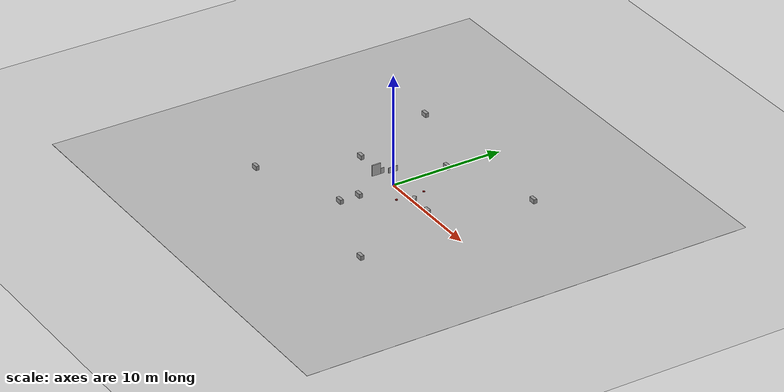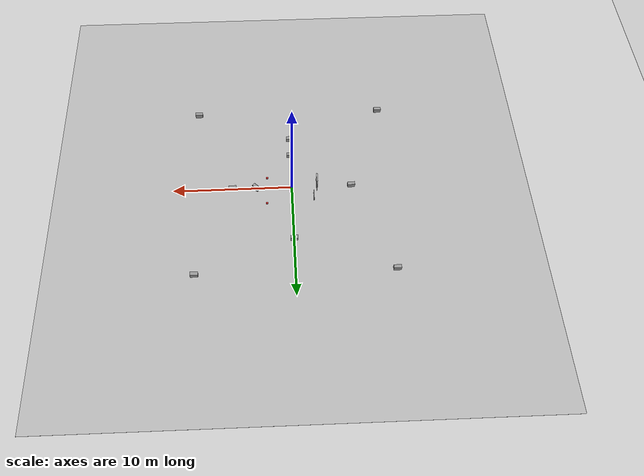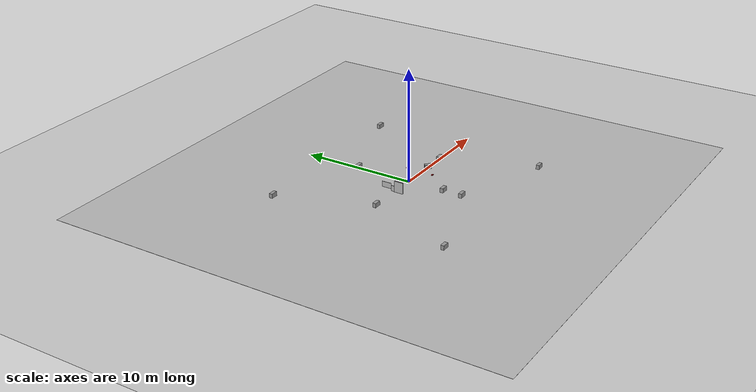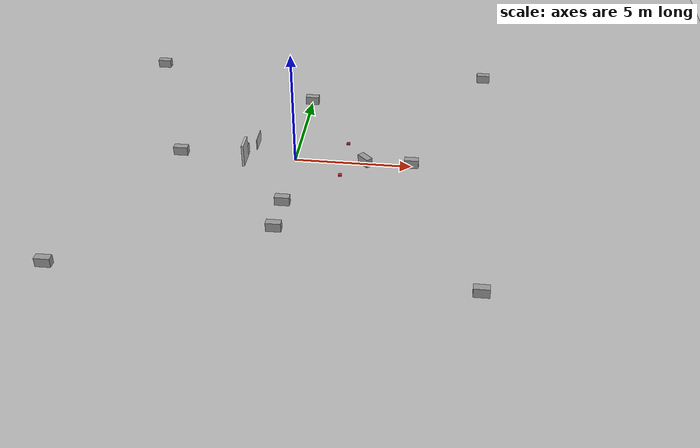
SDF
<sdf version="1.6">
 <world name="default">
  <scene><shadows>0</shadows><ambient>0.4 0.4 0.4 1</ambient><background>0.7 0.7 0.7 1</background></scene>
  <light name="sun" type="directional">
   <cast_shadows>0</cast_shadows>
   <pose>0 0 5 0 -0 0</pose>
   <diffuse>0.8 0.8 0.8 1</diffuse>
   <specular>0.1 0.1 0.1 1</specular>
   <attenuation>
    <range>1000</range>
    <constant>0.9</constant>
    <linear>0.01</linear>
    <quadratic>0.001</quadratic>
   </attenuation>
   <direction>-0.5 0.5 -1</direction>
  </light>
  <physics name="default_physics" default="0" type="ode">
   <max_step_size>0.001</max_step_size>
   <real_time_factor>1</real_time_factor>
   <real_time_update_rate>1000</real_time_update_rate>
  </physics>
  <scene><ambient>0.4 0.4 0.4 1</ambient><background>0.7 0.7 0.7 1</background><shadows>1</shadows></scene>
  <spherical_coordinates>
   <surface_model>EARTH_WGS84</surface_model>
   <latitude_deg>0</latitude_deg>
   <longitude_deg>0</longitude_deg>
   <elevation>0</elevation>
   <heading_deg>0</heading_deg>
  </spherical_coordinates>
  <model name="ground_plane">
   <static>1</static>
   <link name="link">
    <collision name="collision">
     <geometry><plane><normal>0 0 1</normal><size>100 100</size></plane></geometry>
     <surface><friction><ode><mu>1</mu><mu2>1</mu2></ode></friction></surface>
    </collision>
    <visual name="visual">
     <cast_shadows>0</cast_shadows>
     <geometry><plane><normal>0 0 1</normal><size>100 100</size></plane></geometry>
     <material>
      <script><uri>file://media/materials/scripts/gazebo.material</uri><name>Gazebo/Grey</name></script>
     </material>
    </visual>
    <velocity_decay><linear>0</linear><angular>0</angular></velocity_decay>
   </link>
  </model>
  <model name="unit_box">
   <link name="link">
    <inertial>
     <mass>1</mass>
     <inertia>
      <ixx>0.166667</ixx>
      <ixy>0</ixy>
      <ixz>0</ixz>
      <iyy>0.166667</iyy>
      <iyz>0</iyz>
      <izz>0.166667</izz>
     </inertia>
    </inertial>
    <visual name="visual">
     <geometry><box><size>0.139873 0.143387 0.183908</size></box></geometry>
     <material>
      <script><name>Gazebo/Red</name><uri>file://media/materials/scripts/gazebo.material</uri></script>
      <shader type="pixel"><normal_map>__default__</normal_map></shader>
      <ambient>1 0.3 0.3 1</ambient>
      <diffuse>1 0.7 0.7 1</diffuse>
      <specular>1 0.01 0.01 1</specular>
      <emissive>0.9 0 0 1</emissive>
     </material>
    </visual>
    <collision name="collision">
     <geometry><box><size>0.139873 0.143387 0.183908</size></box></geometry>
     <surface>
      <friction>
       <ode><mu>1</mu><mu2>1</mu2><fdir1>0 0 0</fdir1><slip1>0</slip1><slip2>0</slip2></ode>
       <torsional>
        <coefficient>1</coefficient>
        <patch_radius>0</patch_radius>
        <surface_radius>0</surface_radius>
        <use_patch_radius>1</use_patch_radius>
        <ode><slip>0</slip></ode>
       </torsional>
      </friction>
      <bounce><restitution_coefficient>0</restitution_coefficient><threshold>1e+06</threshold></bounce>
      <contact>
       <collide_without_contact>0</collide_without_contact>
       <collide_without_contact_bitmask>1</collide_without_contact_bitmask>
       <collide_bitmask>1</collide_bitmask>
       <ode>
        <soft_cfm>0</soft_cfm>
        <soft_erp>0.2</soft_erp>
        <kp>1e+13</kp>
        <kd>1</kd>
        <max_vel>0.01</max_vel>
        <min_depth>0</min_depth>
       </ode>
       <bullet>
        <split_impulse>1</split_impulse>
        <split_impulse_penetration_threshold>-0.01</split_impulse_penetration_threshold>
        <soft_cfm>0</soft_cfm>
        <soft_erp>0.2</soft_erp>
        <kp>1e+13</kp>
        <kd>1</kd>
       </bullet>
      </contact>
     </surface>
    </collision>
   </link>
   <static>0</static>
   <pose>2.12407 1.4948 0 0 -0 0</pose>
  </model>
  <model name="unit_box_0">
   <link name="link">
    <inertial>
     <mass>1</mass>
     <inertia>
      <ixx>0.166667</ixx>
      <ixy>0</ixy>
      <ixz>0</ixz>
      <iyy>0.166667</iyy>
      <iyz>0</iyz>
      <izz>0.166667</izz>
     </inertia>
    </inertial>
    <visual name="visual">
     <geometry><box><size>0.139873 0.143387 0.183908</size></box></geometry>
     <material>
      <script><name>Gazebo/Red</name><uri>file://media/materials/scripts/gazebo.material</uri></script>
      <shader type="pixel"><normal_map>__default__</normal_map></shader>
      <ambient>1 0.3 0.3 1</ambient>
      <diffuse>1 0.7 0.7 1</diffuse>
      <specular>1 0.01 0.01 1</specular>
      <emissive>0.9 0 0 1</emissive>
     </material>
    </visual>
    <collision name="collision">
     <geometry><box><size>0.139873 0.143387 0.183908</size></box></geometry>
     <surface>
      <friction>
       <ode><mu>1</mu><mu2>1</mu2><fdir1>0 0 0</fdir1><slip1>0</slip1><slip2>0</slip2></ode>
       <torsional>
        <coefficient>1</coefficient>
        <patch_radius>0</patch_radius>
        <surface_radius>0</surface_radius>
        <use_patch_radius>1</use_patch_radius>
        <ode><slip>0</slip></ode>
       </torsional>
      </friction>
      <bounce><restitution_coefficient>0</restitution_coefficient><threshold>1e+06</threshold></bounce>
      <contact>
       <collide_without_contact>0</collide_without_contact>
       <collide_without_contact_bitmask>1</collide_without_contact_bitmask>
       <collide_bitmask>1</collide_bitmask>
       <ode>
        <soft_cfm>0</soft_cfm>
        <soft_erp>0.2</soft_erp>
        <kp>1e+13</kp>
        <kd>1</kd>
        <max_vel>0.01</max_vel>
        <min_depth>0</min_depth>
       </ode>
       <bullet>
        <split_impulse>1</split_impulse>
        <split_impulse_penetration_threshold>-0.01</split_impulse_penetration_threshold>
        <soft_cfm>0</soft_cfm>
        <soft_erp>0.2</soft_erp>
        <kp>1e+13</kp>
        <kd>1</kd>
       </bullet>
      </contact>
     </surface>
    </collision>
   </link>
   <static>0</static>
   <pose>2.06864 -1.00799 0 0 -0 0</pose>
  </model>
  <model name="rug_ivory_2m_0">
   <link name="link">
    <visual name="visual">
     <geometry><box><size>1.6 2 0.005</size></box></geometry>
     <material>
      <script>
       <uri>https://fuel.ignitionrobotics.org/1.0/makerspet/models/rug_ivory_2m/1/files/material/script</uri>
       <uri>https://fuel.ignitionrobotics.org/1.0/makerspet/models/rug_ivory_2m/1/files/material/textures</uri>
       <name>Custom/rug_ivory_2m</name>
      </script>
     </material>
    </visual>
   </link>
   <static>1</static>
   <pose>-1.68463 0.969564 0 0 -0 0</pose>
  </model>
  <model name="makerspet_poster">
   <link name="link">
    <visual name="visual">
     <geometry><box><size>0.03 0.85714 1</size></box></geometry>
     <material>
      <script>
       <uri>https://fuel.ignitionrobotics.org/1.0/makerspet/models/makerspet_poster/1/files/material/script</uri>
       <uri>https://fuel.ignitionrobotics.org/1.0/makerspet/models/makerspet_poster/1/files/material/textures</uri>
       <name>Custom/makerspet</name>
      </script>
     </material>
    </visual>
   </link>
   <static>1</static>
   <pose>-1.79858 1.04969 0 0 -0 0</pose>
  </model>
  <model name="kaiaai_poster">
   <link name="link">
    <visual name="visual">
     <geometry><box><size>0.03 0.9782 1</size></box></geometry>
     <material>
      <script>
       <uri>https://fuel.ignitionrobotics.org/1.0/makerspet/models/kaiaai_poster/1/files/material/script</uri>
       <uri>https://fuel.ignitionrobotics.org/1.0/makerspet/models/kaiaai_poster/1/files/material/textures</uri>
       <name>Custom/kaiaai</name>
      </script>
     </material>
    </visual>
   </link>
   <static>1</static>
   <pose>-2.09205 -0.074601 0 0 -0 0</pose>
  </model>
  <model name="door_08x2m_0">
   <link name="link">
    <visual name="visual">
     <geometry><box><size>0.1 0.8 2</size></box></geometry>
     <material>
      <script>
       <uri>https://fuel.ignitionrobotics.org/1.0/makerspet/models/door_08x2m/1/files/material/script</uri>
       <uri>https://fuel.ignitionrobotics.org/1.0/makerspet/models/door_08x2m/1/files/material/textures</uri>
       <name>Custom/door_08x2m</name>
      </script>
     </material>
    </visual>
   </link>
   <static>1</static>
   <pose>-2.1175 -0.31181 0 0 -0 0</pose>
  </model>
  <model name="table_1">
   <link name="Wall">
    <pose>0 0 0.1985 0 -0 0</pose>
    <inertial>
     <mass>5</mass>
     <inertia><ixx>0.1022</ixx><iyy>0.2197</iyy><izz>0.1905</izz><ixy>0</ixy><ixz>0</ixz><iyz>0</iyz></inertia>
    </inertial>
    <collision name="Wall_Collision"><geometry><box><size>0.608 0.296 0.397</size></box></geometry></collision>
    <visual name="Wall_Visual">
     <geometry><box><size>0.608 0.296 0.397</size></box></geometry>
     <material>
      <script><uri>file://media/materials/scripts/gazebo.material</uri><name>Gazebo/Grey</name></script>
      <ambient>1 1 1 1</ambient>
     </material>
    </visual>
   </link>
   <static>1</static>
   <pose>-8 -8 0 0 -0 0</pose>
  </model>
  <model name="table_2">
   <link name="Wall">
    <pose>0 0 0.1985 0 -0 0</pose>
    <inertial>
     <mass>5</mass>
     <inertia><ixx>0.1022</ixx><iyy>0.2197</iyy><izz>0.1905</izz><ixy>0</ixy><ixz>0</ixz><iyz>0</iyz></inertia>
    </inertial>
    <collision name="Wall_Collision"><geometry><box><size>0.608 0.296 0.397</size></box></geometry></collision>
    <visual name="Wall_Visual">
     <geometry><box><size>0.608 0.296 0.397</size></box></geometry>
     <material>
      <script><uri>file://media/materials/scripts/gazebo.material</uri><name>Gazebo/Grey</name></script>
      <ambient>1 1 1 1</ambient>
     </material>
    </visual>
   </link>
   <static>1</static>
   <pose>8 -8 0 0 -0 0</pose>
  </model>
  <model name="table_3">
   <link name="Wall">
    <pose>0 0 0.1985 0 -0 0</pose>
    <inertial>
     <mass>5</mass>
     <inertia><ixx>0.1022</ixx><iyy>0.2197</iyy><izz>0.1905</izz><ixy>0</ixy><ixz>0</ixz><iyz>0</iyz></inertia>
    </inertial>
    <collision name="Wall_Collision"><geometry><box><size>0.608 0.296 0.397</size></box></geometry></collision>
    <visual name="Wall_Visual">
     <geometry><box><size>0.608 0.296 0.397</size></box></geometry>
     <material>
      <script><uri>file://media/materials/scripts/gazebo.material</uri><name>Gazebo/Grey</name></script>
      <ambient>1 1 1 1</ambient>
     </material>
    </visual>
   </link>
   <static>1</static>
   <pose>0 5 0 0 -0 0</pose>
  </model>
  <model name="table_4">
   <link name="Wall">
    <pose>0 0 0.1985 0 -0 0</pose>
    <inertial>
     <mass>5</mass>
     <inertia><ixx>0.1022</ixx><iyy>0.2197</iyy><izz>0.1905</izz><ixy>0</ixy><ixz>0</ixz><iyz>0</iyz></inertia>
    </inertial>
    <collision name="Wall_Collision"><geometry><box><size>0.608 0.296 0.397</size></box></geometry></collision>
    <visual name="Wall_Visual">
     <geometry><box><size>0.608 0.296 0.397</size></box></geometry>
     <material>
      <script><uri>file://media/materials/scripts/gazebo.material</uri><name>Gazebo/Grey</name></script>
      <ambient>1 1 1 1</ambient>
     </material>
    </visual>
   </link>
   <static>1</static>
   <pose>-5 0 0 0 -0 0</pose>
  </model>
  <model name="table_5">
   <link name="Wall">
    <pose>0 0 0.1985 0 -0 0</pose>
    <inertial>
     <mass>5</mass>
     <inertia><ixx>0.1022</ixx><iyy>0.2197</iyy><izz>0.1905</izz><ixy>0</ixy><ixz>0</ixz><iyz>0</iyz></inertia>
    </inertial>
    <collision name="Wall_Collision"><geometry><box><size>0.608 0.296 0.397</size></box></geometry></collision>
    <visual name="Wall_Visual">
     <geometry><box><size>0.608 0.296 0.397</size></box></geometry>
     <material>
      <script><uri>file://media/materials/scripts/gazebo.material</uri><name>Gazebo/Grey</name></script>
      <ambient>1 1 1 1</ambient>
     </material>
    </visual>
   </link>
   <static>1</static>
   <pose>0 -5 0 0 -0 0</pose>
  </model>
  <model name="table_51">
   <link name="Wall">
    <pose>0 0 0.1985 0 -0 0</pose>
    <inertial>
     <mass>5</mass>
     <inertia><ixx>0.1022</ixx><iyy>0.2197</iyy><izz>0.1905</izz><ixy>0</ixy><ixz>0</ixz><iyz>0</iyz></inertia>
    </inertial>
    <collision name="Wall_Collision"><geometry><box><size>0.608 0.296 0.397</size></box></geometry></collision>
    <visual name="Wall_Visual">
     <geometry><box><size>0.608 0.296 0.397</size></box></geometry>
     <material>
      <script><uri>file://media/materials/scripts/gazebo.material</uri><name>Gazebo/Grey</name></script>
      <ambient>1 1 1 1</ambient>
     </material>
    </visual>
   </link>
   <static>1</static>
   <pose>0.024539 -3.25196 0 0 -0 0</pose>
  </model>
  <model name="table_6">
   <link name="Wall">
    <pose>0 0 0.1985 0 -0 0</pose>
    <inertial>
     <mass>5</mass>
     <inertia><ixx>0.1022</ixx><iyy>0.2197</iyy><izz>0.1905</izz><ixy>0</ixy><ixz>0</ixz><iyz>0</iyz></inertia>
    </inertial>
    <collision name="Wall_Collision"><geometry><box><size>0.608 0.296 0.397</size></box></geometry></collision>
    <visual name="Wall_Visual">
     <geometry><box><size>0.608 0.296 0.397</size></box></geometry>
     <material>
      <script><uri>file://media/materials/scripts/gazebo.material</uri><name>Gazebo/Grey</name></script>
      <ambient>1 1 1 1</ambient>
     </material>
    </visual>
   </link>
   <static>1</static>
   <pose>5 0 0 0 -0 0</pose>
  </model>
  <model name="table_66">
   <link name="Wall">
    <pose>0 0 0.1985 0 -0 0</pose>
    <inertial>
     <mass>5</mass>
     <inertia><ixx>0.1022</ixx><iyy>0.2197</iyy><izz>0.1905</izz><ixy>0</ixy><ixz>0</ixz><iyz>0</iyz></inertia>
    </inertial>
    <collision name="Wall_Collision"><geometry><box><size>0.608 0.296 0.397</size></box></geometry></collision>
    <visual name="Wall_Visual">
     <geometry><box><size>0.608 0.296 0.397</size></box></geometry>
     <material>
      <script><uri>file://media/materials/scripts/gazebo.material</uri><name>Gazebo/Grey</name></script>
      <ambient>1 1 1 1</ambient>
     </material>
    </visual>
   </link>
   <static>1</static>
   <pose>3.018716 -0.000430 0 0 0 -0.785398</pose>
  </model>
  <model name="table_7">
   <link name="Wall">
    <pose>0 0 0.1985 0 -0 0</pose>
    <inertial>
     <mass>5</mass>
     <inertia><ixx>0.1022</ixx><iyy>0.2197</iyy><izz>0.1905</izz><ixy>0</ixy><ixz>0</ixz><iyz>0</iyz></inertia>
    </inertial>
    <collision name="Wall_Collision"><geometry><box><size>0.608 0.296 0.397</size></box></geometry></collision>
    <visual name="Wall_Visual">
     <geometry><box><size>0.608 0.296 0.397</size></box></geometry>
     <material>
      <script><uri>file://media/materials/scripts/gazebo.material</uri><name>Gazebo/Grey</name></script>
      <ambient>1 1 1 1</ambient>
     </material>
    </visual>
   </link>
   <static>1</static>
   <pose>8 8 0 0 -0 0</pose>
  </model>
  <model name="table_8">
   <link name="Wall">
    <pose>0 0 0.1985 0 -0 0</pose>
    <inertial>
     <mass>5</mass>
     <inertia><ixx>0.1022</ixx><iyy>0.2197</iyy><izz>0.1905</izz><ixy>0</ixy><ixz>0</ixz><iyz>0</iyz></inertia>
    </inertial>
    <collision name="Wall_Collision"><geometry><box><size>0.608 0.296 0.397</size></box></geometry></collision>
    <visual name="Wall_Visual">
     <geometry><box><size>0.608 0.296 0.397</size></box></geometry>
     <material>
      <script><uri>file://media/materials/scripts/gazebo.material</uri><name>Gazebo/Grey</name></script>
      <ambient>1 1 1 1</ambient>
     </material>
    </visual>
   </link>
   <static>1</static>
   <pose>-8 8 0 0 -0 0</pose>
  </model>
  <gravity>0 0 -9.8</gravity>
  <magnetic_field>6e-06 2.3e-05 -4.2e-05</magnetic_field>
  <atmosphere type="adiabatic"/>
  <model name="Floor">
   <link name="main">
    <pose>0 0 0.01 0 -0 0</pose>
    <collision name="main_Collision"><geometry><box><size>40 40 0.01</size></box></geometry></collision>
    <visual name="main_Visual">
     <geometry><box><size>40 40 0.01</size></box></geometry>
     <material>
      <script>
       <uri>model://Floor/materials/scripts</uri>
       <uri>model://Floor/materials/textures</uri>
       <name>floor</name>
      </script>
     </material>
    </visual>
   </link>
   <static>1</static>
  </model>
 </world>
</sdf>
